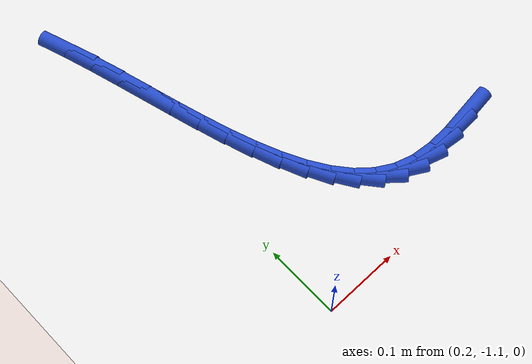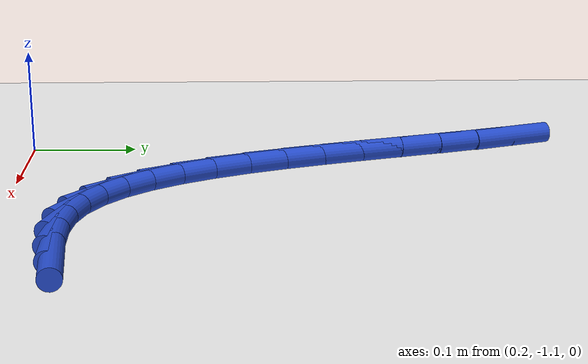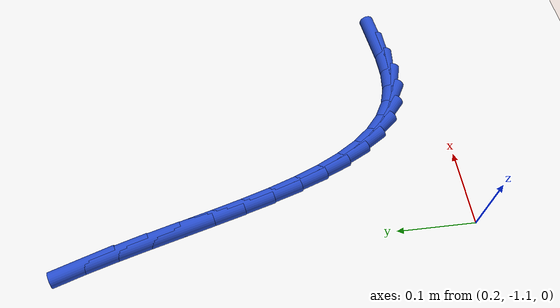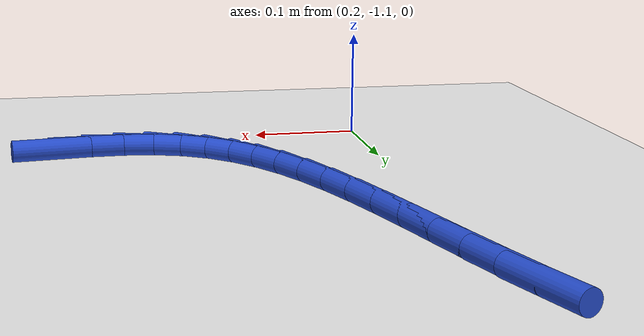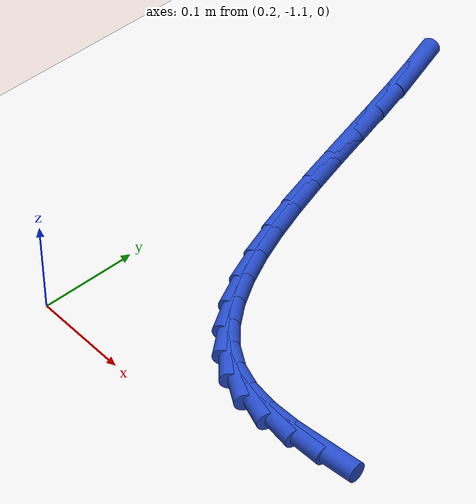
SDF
<sdf version="1.6">
 <world name="default">
  <model name="ground_plane">
   <static>1</static>
   <link name="link">
    <collision name="collision">
     <geometry><plane><normal>0 0 1</normal><size>100 100</size></plane></geometry>
     <surface><friction><ode><mu>100</mu><mu2>50</mu2></ode></friction></surface>
    </collision>
    <visual name="visual">
     <cast_shadows>0</cast_shadows>
     <geometry><plane><normal>0 0 1</normal><size>100 100</size></plane></geometry>
     <material>
      <script><uri>file://media/materials/scripts/gazebo.material</uri><name>Gazebo/WhiteGlow</name></script>
     </material>
    </visual>
   </link>
  </model>
  <model name="line">
   <link name="link_174">
    <pose>0.5012221526712363 -1.035026498949916 0.01 0 1.57 0.12095695755657007</pose>
    <collision name="collision">
     <geometry><cylinder><radius>0.01</radius><length>0.08</length></cylinder></geometry>
    </collision>
    <visual name="visual">
     <material>
      <script><name>Gazebo/Blue</name><uri>file://media/materials/scripts/gazebo.material</uri></script>
     </material>
     <geometry><cylinder><radius>0.01</radius><length>0.08</length></cylinder></geometry>
    </visual>
   </link>
   <link name="link_175">
    <pose>0.4681566307323597 -1.039045623744762 0.01 0 1.57 0.031171811484159175</pose>
    <collision name="collision">
     <geometry><cylinder><radius>0.01</radius><length>0.08</length></cylinder></geometry>
    </collision>
    <visual name="visual">
     <material>
      <script><name>Gazebo/Blue</name><uri>file://media/materials/scripts/gazebo.material</uri></script>
     </material>
     <geometry><cylinder><radius>0.01</radius><length>0.08</length></cylinder></geometry>
    </visual>
   </link>
   <link name="link_176">
    <pose>0.4370387125180779 -1.040015939925012 0.01 0 1.57 -0.10785308529907878</pose>
    <collision name="collision">
     <geometry><cylinder><radius>0.01</radius><length>0.08</length></cylinder></geometry>
    </collision>
    <visual name="visual">
     <material>
      <script><name>Gazebo/Blue</name><uri>file://media/materials/scripts/gazebo.material</uri></script>
     </material>
     <geometry><cylinder><radius>0.01</radius><length>0.08</length></cylinder></geometry>
    </visual>
   </link>
   <link name="link_177">
    <pose>0.408267558098038 -1.036900794017772 0.01 0 1.57 -0.30467572326582415</pose>
    <collision name="collision">
     <geometry><cylinder><radius>0.01</radius><length>0.08</length></cylinder></geometry>
    </collision>
    <visual name="visual">
     <material>
      <script><name>Gazebo/Blue</name><uri>file://media/materials/scripts/gazebo.material</uri></script>
     </material>
     <geometry><cylinder><radius>0.01</radius><length>0.08</length></cylinder></geometry>
    </visual>
   </link>
   <link name="link_178">
    <pose>0.3822217694883906 -1.0287102570248137 0.01 0 1.57 -0.5239205935425667</pose>
    <collision name="collision">
     <geometry><cylinder><radius>0.01</radius><length>0.08</length></cylinder></geometry>
    </collision>
    <visual name="visual">
     <material>
      <script><name>Gazebo/Blue</name><uri>file://media/materials/scripts/gazebo.material</uri></script>
     </material>
     <geometry><cylinder><radius>0.01</radius><length>0.08</length></cylinder></geometry>
    </visual>
   </link>
   <link name="link_179">
    <pose>0.35892895252614626 -1.0152521462951216 0.01 0 1.57 -0.7200094640829264</pose>
    <collision name="collision">
     <geometry><cylinder><radius>0.01</radius><length>0.08</length></cylinder></geometry>
    </collision>
    <visual name="visual">
     <material>
      <script><name>Gazebo/Blue</name><uri>file://media/materials/scripts/gazebo.material</uri></script>
     </material>
     <geometry><cylinder><radius>0.01</radius><length>0.08</length></cylinder></geometry>
    </visual>
   </link>
   <link name="link_180">
    <pose>0.3381224498975092 -0.9970030823374453 0.01 0 1.57 -0.8810435659558032</pose>
    <collision name="collision">
     <geometry><cylinder><radius>0.01</radius><length>0.08</length></cylinder></geometry>
    </collision>
    <visual name="visual">
     <material>
      <script><name>Gazebo/Blue</name><uri>file://media/materials/scripts/gazebo.material</uri></script>
     </material>
     <geometry><cylinder><radius>0.01</radius><length>0.08</length></cylinder></geometry>
    </visual>
   </link>
   <link name="link_181">
    <pose>0.3195265035111591 -0.9744603699655442 0.01 0 1.57 -1.0067759508937306</pose>
    <collision name="collision">
     <geometry><cylinder><radius>0.01</radius><length>0.08</length></cylinder></geometry>
    </collision>
    <visual name="visual">
     <material>
      <script><name>Gazebo/Blue</name><uri>file://media/materials/scripts/gazebo.material</uri></script>
     </material>
     <geometry><cylinder><radius>0.01</radius><length>0.08</length></cylinder></geometry>
    </visual>
   </link>
   <link name="link_182">
    <pose>0.30286535527577535 -0.9481213139931794 0.01 0 1.57 -1.1022197057034144</pose>
    <collision name="collision">
     <geometry><cylinder><radius>0.01</radius><length>0.08</length></cylinder></geometry>
    </collision>
    <visual name="visual">
     <material>
      <script><name>Gazebo/Blue</name><uri>file://media/materials/scripts/gazebo.material</uri></script>
     </material>
     <geometry><cylinder><radius>0.01</radius><length>0.08</length></cylinder></geometry>
    </visual>
   </link>
   <link name="link_183">
    <pose>0.28786324710003713 -0.91848321923411 0.01 0 1.57 -1.1733229972449037</pose>
    <collision name="collision">
     <geometry><cylinder><radius>0.01</radius><length>0.08</length></cylinder></geometry>
    </collision>
    <visual name="visual">
     <material>
      <script><name>Gazebo/Blue</name><uri>file://media/materials/scripts/gazebo.material</uri></script>
     </material>
     <geometry><cylinder><radius>0.01</radius><length>0.08</length></cylinder></geometry>
    </visual>
   </link>
   <link name="link_184">
    <pose>0.2742444208926249 -0.8860433905020983 0.01 0 1.57 -1.225154895685289</pose>
    <collision name="collision">
     <geometry><cylinder><radius>0.01</radius><length>0.08</length></cylinder></geometry>
    </collision>
    <visual name="visual">
     <material>
      <script><name>Gazebo/Blue</name><uri>file://media/materials/scripts/gazebo.material</uri></script>
     </material>
     <geometry><cylinder><radius>0.01</radius><length>0.08</length></cylinder></geometry>
    </visual>
   </link>
   <link name="link_185">
    <pose>0.26173311856221765 -0.8512991326109034 0.01 0 1.57 -1.2615129965314598</pose>
    <collision name="collision">
     <geometry><cylinder><radius>0.01</radius><length>0.08</length></cylinder></geometry>
    </collision>
    <visual name="visual">
     <material>
      <script><name>Gazebo/Blue</name><uri>file://media/materials/scripts/gazebo.material</uri></script>
     </material>
     <geometry><cylinder><radius>0.01</radius><length>0.08</length></cylinder></geometry>
    </visual>
   </link>
   <link name="link_186">
    <pose>0.2500535820174948 -0.814747750374286 0.01 0 1.57 -1.2850395093184799</pose>
    <collision name="collision">
     <geometry><cylinder><radius>0.01</radius><length>0.08</length></cylinder></geometry>
    </collision>
    <visual name="visual">
     <material>
      <script><name>Gazebo/Blue</name><uri>file://media/materials/scripts/gazebo.material</uri></script>
     </material>
     <geometry><cylinder><radius>0.01</radius><length>0.08</length></cylinder></geometry>
    </visual>
   </link>
   <link name="link_187">
    <pose>0.23893005316713606 -0.7768865486060065 0.01 0 1.57 -1.2974366601837026</pose>
    <collision name="collision">
     <geometry><cylinder><radius>0.01</radius><length>0.08</length></cylinder></geometry>
    </collision>
    <visual name="visual">
     <material>
      <script><name>Gazebo/Blue</name><uri>file://media/materials/scripts/gazebo.material</uri></script>
     </material>
     <geometry><cylinder><radius>0.01</radius><length>0.08</length></cylinder></geometry>
    </visual>
   </link>
   <link name="link_188">
    <pose>0.22808677391982093 -0.7382128321198251 0.01 0 1.57 -1.2996463701325067</pose>
    <collision name="collision">
     <geometry><cylinder><radius>0.01</radius><length>0.08</length></cylinder></geometry>
    </collision>
    <visual name="visual">
     <material>
      <script><name>Gazebo/Blue</name><uri>file://media/materials/scripts/gazebo.material</uri></script>
     </material>
     <geometry><cylinder><radius>0.01</radius><length>0.08</length></cylinder></geometry>
    </visual>
   </link>
   <link name="link_189">
    <pose>0.2172479861842287 -0.6992239057295013 0.01 0 1.57 -1.2919633764211187</pose>
    <collision name="collision">
     <geometry><cylinder><radius>0.01</radius><length>0.08</length></cylinder></geometry>
    </collision>
    <visual name="visual">
     <material>
      <script><name>Gazebo/Blue</name><uri>file://media/materials/scripts/gazebo.material</uri></script>
     </material>
     <geometry><cylinder><radius>0.01</radius><length>0.08</length></cylinder></geometry>
    </visual>
   </link>
   <link name="link_190">
    <pose>0.20613793186903923 -0.6604170742487971 0.01 0 1.57 -1.2740818799534595</pose>
    <collision name="collision">
     <geometry><cylinder><radius>0.01</radius><length>0.08</length></cylinder></geometry>
    </collision>
    <visual name="visual">
     <material>
      <script><name>Gazebo/Blue</name><uri>file://media/materials/scripts/gazebo.material</uri></script>
     </material>
     <geometry><cylinder><radius>0.01</radius><length>0.08</length></cylinder></geometry>
    </visual>
   </link>
   <link name="link_191">
    <pose>0.19448085288293204 -0.6222896424914723 0.01 0 1.57 -1.2450820379853964</pose>
    <collision name="collision">
     <geometry><cylinder><radius>0.01</radius><length>0.08</length></cylinder></geometry>
    </collision>
    <visual name="visual">
     <material>
      <script><name>Gazebo/Blue</name><uri>file://media/materials/scripts/gazebo.material</uri></script>
     </material>
     <geometry><cylinder><radius>0.01</radius><length>0.08</length></cylinder></geometry>
    </visual>
   </link>
  </model>
 </world>
</sdf>
